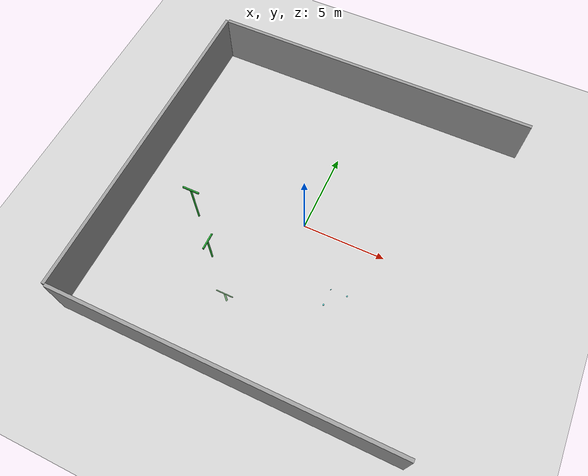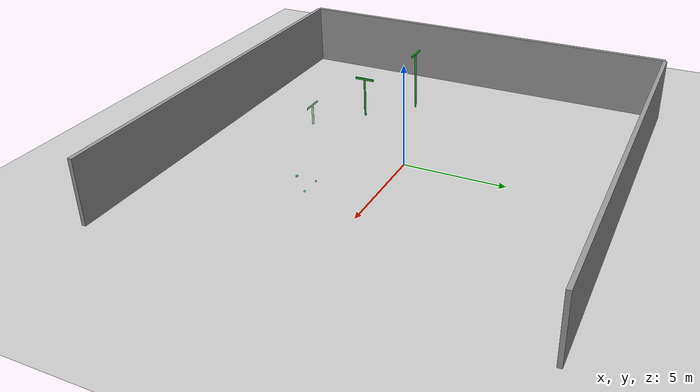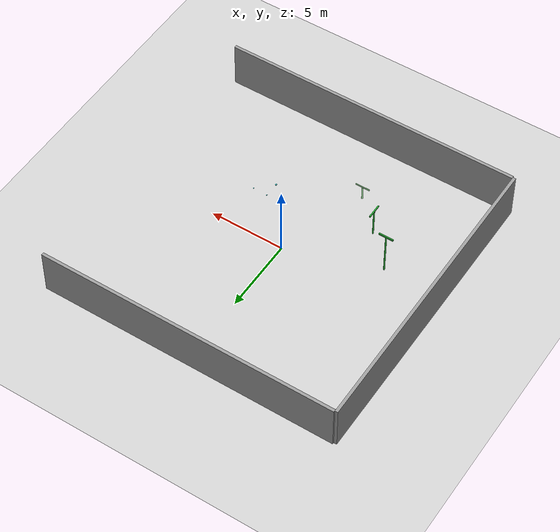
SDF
<sdf version="1.6">
 <world name="default">
  <model name="ground_plane">
   <static>1</static>
   <link name="link">
    <collision name="collision">
     <geometry><plane><normal>0 0 1</normal><size>100 100</size></plane></geometry>
     <surface><friction><ode><mu>100</mu><mu2>50</mu2></ode></friction></surface>
    </collision>
    <visual name="visual">
     <cast_shadows>0</cast_shadows>
     <geometry><plane><normal>0 0 1</normal><size>100 100</size></plane></geometry>
     <material>
      <script><uri>file://media/materials/scripts/gazebo.material</uri><name>Gazebo/Grey</name></script>
     </material>
    </visual>
   </link>
  </model>
  <model name="big_grey_wall_0">
   <static>1</static>
   <link name="link">
    <pose>0 0 1.4 0 -0 0</pose>
    <collision name="collision"><geometry><box><size>20 0.2 3.5</size></box></geometry></collision>
    <visual name="visual">
     <cast_shadows>0</cast_shadows>
     <geometry><box><size>20 0.2 3.5</size></box></geometry>
     <material>
      <script>
       <uri>model://grey_wall/materials/scripts</uri>
       <uri>model://grey_wall/materials/textures</uri>
       <name>vrc/grey_wall</name>
      </script>
     </material>
    </visual>
   </link>
   <pose>0 -10 0 0 -0 0</pose>
  </model>
  <model name="big_grey_wall_1">
   <static>1</static>
   <link name="link">
    <pose>0 0 1.4 0 -0 0</pose>
    <collision name="collision"><geometry><box><size>20 0.2 3.5</size></box></geometry></collision>
    <visual name="visual">
     <cast_shadows>0</cast_shadows>
     <geometry><box><size>20 0.2 3.5</size></box></geometry>
     <material>
      <script>
       <uri>model://grey_wall/materials/scripts</uri>
       <uri>model://grey_wall/materials/textures</uri>
       <name>vrc/grey_wall</name>
      </script>
     </material>
    </visual>
   </link>
   <pose>-10.11 0 0 0 -0 1.5707</pose>
  </model>
  <model name="big_grey_wall_2">
   <static>1</static>
   <link name="link">
    <pose>0 0 1.4 0 -0 0</pose>
    <collision name="collision"><geometry><box><size>20 0.2 3.5</size></box></geometry></collision>
    <visual name="visual">
     <cast_shadows>0</cast_shadows>
     <geometry><box><size>20 0.2 3.5</size></box></geometry>
     <material>
      <script>
       <uri>model://grey_wall/materials/scripts</uri>
       <uri>model://grey_wall/materials/textures</uri>
       <name>vrc/grey_wall</name>
      </script>
     </material>
    </visual>
   </link>
   <pose>0 10 0 0 -0 0</pose>
  </model>
  <model name="Objects">
   <link name="link_0">
    <pose>-0.32 0.333333 -0.01 0 -0 0</pose>
    <inertial>
     <mass>0.01</mass>
     <inertia>
      <ixx>0.166667</ixx>
      <ixy>0</ixy>
      <ixz>0</ixz>
      <iyy>0.166667</iyy>
      <iyz>0</iyz>
      <izz>0.166667</izz>
     </inertia>
    </inertial>
    <visual name="visual">
     <geometry><box><size>0.05 0.05 0.05</size></box></geometry>
     <material>
      <lighting>1</lighting>
      <script><uri>file://media/materials/scripts/gazebo.material</uri><name>Gazebo/Grey</name></script>
      <ambient>0 1 0.6 1</ambient>
      <diffuse>0.4 1 1 1</diffuse>
      <specular>0.01 0.01 0.01 1</specular>
      <emissive>0 0 0 1</emissive>
      <shader type="vertex"><normal_map>__default__</normal_map></shader>
     </material>
    </visual>
    <visual name="ModelPreview_0::link_0::visual_1">
     <geometry><box><size>0.05 0.05 0.05</size></box></geometry>
     <material>
      <lighting>1</lighting>
      <script><uri>file://media/materials/scripts/gazebo.material</uri><name>Gazebo/Grey</name></script>
      <ambient>0 1 0.6 1</ambient>
      <diffuse>0.4 1 1 1</diffuse>
      <specular>0.01 0.01 0.01 1</specular>
      <emissive>0 0 0 1</emissive>
      <shader type="vertex"><normal_map>__default__</normal_map></shader>
     </material>
    </visual>
    <collision name="collision">
     <geometry><box><size>0.05 0.05 0.05</size></box></geometry>
     <surface>
      <friction>
       <ode><mu>1</mu><mu2>1</mu2><fdir1>0 0 0</fdir1><slip1>0</slip1><slip2>0</slip2></ode>
       <torsional>
        <coefficient>1</coefficient>
        <patch_radius>0</patch_radius>
        <surface_radius>0</surface_radius>
        <use_patch_radius>1</use_patch_radius>
        <ode><slip>0</slip></ode>
       </torsional>
      </friction>
      <bounce><restitution_coefficient>0</restitution_coefficient><threshold>1e+06</threshold></bounce>
      <contact>
       <collide_without_contact>0</collide_without_contact>
       <collide_without_contact_bitmask>1</collide_without_contact_bitmask>
       <collide_bitmask>1</collide_bitmask>
       <ode>
        <soft_cfm>0</soft_cfm>
        <soft_erp>0.2</soft_erp>
        <kp>1e+13</kp>
        <kd>1</kd>
        <max_vel>0.01</max_vel>
        <min_depth>0</min_depth>
       </ode>
       <bullet>
        <split_impulse>1</split_impulse>
        <split_impulse_penetration_threshold>-0.01</split_impulse_penetration_threshold>
        <soft_cfm>0</soft_cfm>
        <soft_erp>0.2</soft_erp>
        <kp>1e+13</kp>
        <kd>1</kd>
       </bullet>
      </contact>
     </surface>
    </collision>
   </link>
   <link name="link_1">
    <pose>-0.34 -0.666667 0.005 0 -0 0</pose>
    <inertial>
     <mass>0.01</mass>
     <inertia>
      <ixx>0.166667</ixx>
      <ixy>0</ixy>
      <ixz>0</ixz>
      <iyy>0.166667</iyy>
      <iyz>0</iyz>
      <izz>0.166667</izz>
     </inertia>
    </inertial>
    <visual name="visual">
     <geometry><box><size>0.08 0.08 0.08</size></box></geometry>
     <material>
      <lighting>1</lighting>
      <script><uri>file://media/materials/scripts/gazebo.material</uri><name>Gazebo/Grey</name></script>
      <ambient>0 1 0.6 1</ambient>
      <diffuse>0.4 1 1 1</diffuse>
      <specular>0.01 0.01 0.01 1</specular>
      <emissive>0 0 0 1</emissive>
      <shader type="vertex"><normal_map>__default__</normal_map></shader>
     </material>
    </visual>
    <collision name="collision">
     <geometry><box><size>0.08 0.08 0.08</size></box></geometry>
     <surface>
      <friction>
       <ode><mu>1</mu><mu2>1</mu2><fdir1>0 0 0</fdir1><slip1>0</slip1><slip2>0</slip2></ode>
       <torsional>
        <coefficient>1</coefficient>
        <patch_radius>0</patch_radius>
        <surface_radius>0</surface_radius>
        <use_patch_radius>1</use_patch_radius>
        <ode><slip>0</slip></ode>
       </torsional>
      </friction>
      <bounce><restitution_coefficient>0</restitution_coefficient><threshold>1e+06</threshold></bounce>
      <contact>
       <collide_without_contact>0</collide_without_contact>
       <collide_without_contact_bitmask>1</collide_without_contact_bitmask>
       <collide_bitmask>1</collide_bitmask>
       <ode>
        <soft_cfm>0</soft_cfm>
        <soft_erp>0.2</soft_erp>
        <kp>1e+13</kp>
        <kd>1</kd>
        <max_vel>0.01</max_vel>
        <min_depth>0</min_depth>
       </ode>
       <bullet>
        <split_impulse>1</split_impulse>
        <split_impulse_penetration_threshold>-0.01</split_impulse_penetration_threshold>
        <soft_cfm>0</soft_cfm>
        <soft_erp>0.2</soft_erp>
        <kp>1e+13</kp>
        <kd>1</kd>
       </bullet>
      </contact>
     </surface>
    </collision>
   </link>
   <link name="link_2">
    <pose>0.66 0.333333 0.005 0 -0 0</pose>
    <inertial>
     <mass>0.01</mass>
     <inertia><ixx>0.1</ixx><ixy>0</ixy><ixz>0</ixz><iyy>0.1</iyy><iyz>0</iyz><izz>0.1</izz></inertia>
    </inertial>
    <visual name="visual">
     <geometry><sphere><radius>0.04</radius></sphere></geometry>
     <material>
      <lighting>1</lighting>
      <script><uri>file://media/materials/scripts/gazebo.material</uri><name>Gazebo/Grey</name></script>
      <ambient>0 1 0.6 1</ambient>
      <diffuse>0.4 1 1 1</diffuse>
      <specular>0.01 0.01 0.01 1</specular>
      <emissive>0 0 0 1</emissive>
      <shader type="vertex"><normal_map>__default__</normal_map></shader>
     </material>
    </visual>
    <collision name="collision">
     <geometry><sphere><radius>0.04</radius></sphere></geometry>
     <surface>
      <friction>
       <ode><mu>1</mu><mu2>1</mu2><fdir1>0 0 0</fdir1><slip1>0</slip1><slip2>0</slip2></ode>
       <torsional>
        <coefficient>1</coefficient>
        <patch_radius>0</patch_radius>
        <surface_radius>0</surface_radius>
        <use_patch_radius>1</use_patch_radius>
        <ode><slip>0</slip></ode>
       </torsional>
      </friction>
      <bounce><restitution_coefficient>0</restitution_coefficient><threshold>1e+06</threshold></bounce>
      <contact>
       <collide_without_contact>0</collide_without_contact>
       <collide_without_contact_bitmask>1</collide_without_contact_bitmask>
       <collide_bitmask>1</collide_bitmask>
       <ode>
        <soft_cfm>0</soft_cfm>
        <soft_erp>0.2</soft_erp>
        <kp>1e+13</kp>
        <kd>1</kd>
        <max_vel>0.01</max_vel>
        <min_depth>0</min_depth>
       </ode>
       <bullet>
        <split_impulse>1</split_impulse>
        <split_impulse_penetration_threshold>-0.01</split_impulse_penetration_threshold>
        <soft_cfm>0</soft_cfm>
        <soft_erp>0.2</soft_erp>
        <kp>1e+13</kp>
        <kd>1</kd>
       </bullet>
      </contact>
     </surface>
    </collision>
   </link>
   <static>0</static>
   <pose>3.34 -3.33333 0.035 1e-06 1e-06 0</pose>
  </model>
  <model name="Pilars_0">
   <link name="link_0">
    <inertial>
     <mass>1000</mass>
     <inertia><ixx>0.145833</ixx><ixy>0</ixy><ixz>0</ixz><iyy>0.145833</iyy><iyz>0</iyz><izz>0.125</izz></inertia>
    </inertial>
    <visual name="visual">
     <geometry><cylinder><radius>0.05</radius><length>2</length></cylinder></geometry>
     <material>
      <lighting>1</lighting>
      <script><uri>file://media/materials/scripts/gazebo.material</uri><name>Gazebo/Green</name></script>
      <ambient>0 0.54 0.39 1</ambient>
      <diffuse>0.7 1 0.7 1</diffuse>
      <specular>0.01 0.01 0.01 1</specular>
      <emissive>0 0 0 1</emissive>
      <shader type="vertex"><normal_map>__default__</normal_map></shader>
     </material>
    </visual>
    <visual name="ModelPreview_0::link_0::visual_2">
     <pose>0 0 1.05 0 -0 0</pose>
     <geometry><box><size>0.08 1 0.1</size></box></geometry>
     <material>
      <lighting>1</lighting>
      <script><uri>file://media/materials/scripts/gazebo.material</uri><name>Gazebo/Green</name></script>
      <ambient>0 0.54 0.39 1</ambient>
      <diffuse>0.7 1 0.7 1</diffuse>
      <specular>0.01 0.01 0.01 1</specular>
      <emissive>0 0 0 1</emissive>
      <shader type="vertex"><normal_map>__default__</normal_map></shader>
     </material>
    </visual>
    <collision name="collision">
     <geometry><cylinder><radius>0.05</radius><length>2</length></cylinder></geometry>
     <surface>
      <friction>
       <ode><mu>1</mu><mu2>1</mu2><fdir1>0 0 0</fdir1><slip1>0</slip1><slip2>0</slip2></ode>
       <torsional>
        <coefficient>1</coefficient>
        <patch_radius>0</patch_radius>
        <surface_radius>0</surface_radius>
        <use_patch_radius>1</use_patch_radius>
        <ode><slip>0</slip></ode>
       </torsional>
      </friction>
      <bounce><restitution_coefficient>0</restitution_coefficient><threshold>1e+06</threshold></bounce>
      <contact>
       <collide_without_contact>0</collide_without_contact>
       <collide_without_contact_bitmask>1</collide_without_contact_bitmask>
       <collide_bitmask>1</collide_bitmask>
       <ode>
        <soft_cfm>0</soft_cfm>
        <soft_erp>0.2</soft_erp>
        <kp>1e+13</kp>
        <kd>1</kd>
        <max_vel>0.01</max_vel>
        <min_depth>0</min_depth>
       </ode>
       <bullet>
        <split_impulse>1</split_impulse>
        <split_impulse_penetration_threshold>-0.01</split_impulse_penetration_threshold>
        <soft_cfm>0</soft_cfm>
        <soft_erp>0.2</soft_erp>
        <kp>1e+13</kp>
        <kd>1</kd>
       </bullet>
      </contact>
     </surface>
    </collision>
    <collision name="collision_2">
     <pose>0 0 1.05 0 -0 0</pose>
     <geometry><box><size>0.08 1 0.1</size></box></geometry>
     <surface>
      <friction>
       <ode><mu>1</mu><mu2>1</mu2><fdir1>0 0 0</fdir1><slip1>0</slip1><slip2>0</slip2></ode>
       <torsional>
        <coefficient>1</coefficient>
        <patch_radius>0</patch_radius>
        <surface_radius>0</surface_radius>
        <use_patch_radius>1</use_patch_radius>
        <ode><slip>0</slip></ode>
       </torsional>
      </friction>
      <bounce><restitution_coefficient>0</restitution_coefficient><threshold>1e+06</threshold></bounce>
      <contact>
       <collide_without_contact>0</collide_without_contact>
       <collide_without_contact_bitmask>1</collide_without_contact_bitmask>
       <collide_bitmask>1</collide_bitmask>
       <ode>
        <soft_cfm>0</soft_cfm>
        <soft_erp>0.2</soft_erp>
        <kp>1e+13</kp>
        <kd>1</kd>
        <max_vel>0.01</max_vel>
        <min_depth>0</min_depth>
       </ode>
       <bullet>
        <split_impulse>1</split_impulse>
        <split_impulse_penetration_threshold>-0.01</split_impulse_penetration_threshold>
        <soft_cfm>0</soft_cfm>
        <soft_erp>0.2</soft_erp>
        <kp>1e+13</kp>
        <kd>1</kd>
       </bullet>
      </contact>
     </surface>
    </collision>
   </link>
   <link name="link_1">
    <pose>2 -2 -0.5 0 -0 0</pose>
    <inertial>
     <mass>1000</mass>
     <inertia><ixx>0.145833</ixx><ixy>0</ixy><ixz>0</ixz><iyy>0.145833</iyy><iyz>0</iyz><izz>0.125</izz></inertia>
    </inertial>
    <visual name="visual">
     <geometry><cylinder><radius>0.05</radius><length>1</length></cylinder></geometry>
     <material>
      <lighting>1</lighting>
      <script><uri>file://media/materials/scripts/gazebo.material</uri><name>Gazebo/Grey</name></script>
      <ambient>0 0.54 0.39 1</ambient>
      <diffuse>0.7 1 0.7 1</diffuse>
      <specular>0.01 0.01 0.01 1</specular>
      <emissive>0 0 0 1</emissive>
      <shader type="vertex"><normal_map>__default__</normal_map></shader>
     </material>
    </visual>
    <visual name="ModelPreview_0::link_1::visual_1">
     <pose>0 0 0.55 0 -0 0</pose>
     <geometry><box><size>1 0.035 0.1</size></box></geometry>
     <material>
      <lighting>1</lighting>
      <script><uri>file://media/materials/scripts/gazebo.material</uri><name>Gazebo/Grey</name></script>
      <ambient>0 0.54 0.39 1</ambient>
      <diffuse>0.7 1 0.7 1</diffuse>
      <specular>0.01 0.01 0.01 1</specular>
      <emissive>0 0 0 1</emissive>
      <shader type="vertex"><normal_map>__default__</normal_map></shader>
     </material>
    </visual>
    <collision name="collision">
     <geometry><cylinder><radius>0.05</radius><length>1</length></cylinder></geometry>
     <surface>
      <friction>
       <ode><mu>1</mu><mu2>1</mu2><fdir1>0 0 0</fdir1><slip1>0</slip1><slip2>0</slip2></ode>
       <torsional>
        <coefficient>1</coefficient>
        <patch_radius>0</patch_radius>
        <surface_radius>0</surface_radius>
        <use_patch_radius>1</use_patch_radius>
        <ode><slip>0</slip></ode>
       </torsional>
      </friction>
      <bounce><restitution_coefficient>0</restitution_coefficient><threshold>1e+06</threshold></bounce>
      <contact>
       <collide_without_contact>0</collide_without_contact>
       <collide_without_contact_bitmask>1</collide_without_contact_bitmask>
       <collide_bitmask>1</collide_bitmask>
       <ode>
        <soft_cfm>0</soft_cfm>
        <soft_erp>0.2</soft_erp>
        <kp>1e+13</kp>
        <kd>1</kd>
        <max_vel>0.01</max_vel>
        <min_depth>0</min_depth>
       </ode>
       <bullet>
        <split_impulse>1</split_impulse>
        <split_impulse_penetration_threshold>-0.01</split_impulse_penetration_threshold>
        <soft_cfm>0</soft_cfm>
        <soft_erp>0.2</soft_erp>
        <kp>1e+13</kp>
        <kd>1</kd>
       </bullet>
      </contact>
     </surface>
    </collision>
    <collision name="__default__">
     <pose>0 0 0.55 0 -0 0</pose>
     <geometry><box><size>1 0.035 0.1</size></box></geometry>
     <surface>
      <friction>
       <ode><mu>1</mu><mu2>1</mu2><fdir1>0 0 0</fdir1><slip1>0</slip1><slip2>0</slip2></ode>
       <torsional>
        <coefficient>1</coefficient>
        <patch_radius>0</patch_radius>
        <surface_radius>0</surface_radius>
        <use_patch_radius>1</use_patch_radius>
        <ode><slip>0</slip></ode>
       </torsional>
      </friction>
      <bounce><restitution_coefficient>0</restitution_coefficient><threshold>1e+06</threshold></bounce>
      <contact>
       <collide_without_contact>0</collide_without_contact>
       <collide_without_contact_bitmask>1</collide_without_contact_bitmask>
       <collide_bitmask>1</collide_bitmask>
       <ode>
        <soft_cfm>0</soft_cfm>
        <soft_erp>0.2</soft_erp>
        <kp>1e+13</kp>
        <kd>1</kd>
        <max_vel>0.01</max_vel>
        <min_depth>0</min_depth>
       </ode>
       <bullet>
        <split_impulse>1</split_impulse>
        <split_impulse_penetration_threshold>-0.01</split_impulse_penetration_threshold>
        <soft_cfm>0</soft_cfm>
        <soft_erp>0.2</soft_erp>
        <kp>1e+13</kp>
        <kd>1</kd>
       </bullet>
      </contact>
     </surface>
    </collision>
   </link>
   <link name="link_2">
    <pose>-2 2 0.5 0 -0 0</pose>
    <inertial>
     <mass>1000</mass>
     <inertia><ixx>0.145833</ixx><ixy>0</ixy><ixz>0</ixz><iyy>0.145833</iyy><iyz>0</iyz><izz>0.125</izz></inertia>
    </inertial>
    <visual name="visual">
     <geometry><cylinder><radius>0.05</radius><length>3</length></cylinder></geometry>
     <material>
      <lighting>1</lighting>
      <script><uri>file://media/materials/scripts/gazebo.material</uri><name>Gazebo/Green</name></script>
      <ambient>0 0.54 0.39 1</ambient>
      <diffuse>0.7 1 0.7 1</diffuse>
      <specular>0.01 0.01 0.01 1</specular>
      <emissive>0 0 0 1</emissive>
      <shader type="vertex"><normal_map>__default__</normal_map></shader>
     </material>
    </visual>
    <visual name="ModelPreview_0::link_2::visual_3">
     <pose>0 0 1.55 0 -0 0</pose>
     <geometry><box><size>1 0.08 0.1</size></box></geometry>
     <material>
      <lighting>1</lighting>
      <script><uri>file://media/materials/scripts/gazebo.material</uri><name>Gazebo/Green</name></script>
      <ambient>0 0.54 0.39 1</ambient>
      <diffuse>0.7 1 0.7 1</diffuse>
      <specular>0.01 0.01 0.01 1</specular>
      <emissive>0 0 0 1</emissive>
      <shader type="vertex"><normal_map>__default__</normal_map></shader>
     </material>
    </visual>
    <visual name="ModelPreview_0::link_2::visual_2">
     <pose>0 0 1.55 0 -0 0</pose>
     <geometry><box><size>1 0.08 0.1</size></box></geometry>
     <material>
      <lighting>1</lighting>
      <script><uri>file://media/materials/scripts/gazebo.material</uri><name>Gazebo/Green</name></script>
      <ambient>0 0.54 0.39 1</ambient>
      <diffuse>0.7 1 0.7 1</diffuse>
      <specular>0.01 0.01 0.01 1</specular>
      <emissive>0 0 0 1</emissive>
      <shader type="vertex"><normal_map>__default__</normal_map></shader>
     </material>
    </visual>
    <collision name="collision">
     <geometry><cylinder><radius>0.05</radius><length>3</length></cylinder></geometry>
     <surface>
      <friction>
       <ode><mu>1</mu><mu2>1</mu2><fdir1>0 0 0</fdir1><slip1>0</slip1><slip2>0</slip2></ode>
       <torsional>
        <coefficient>1</coefficient>
        <patch_radius>0</patch_radius>
        <surface_radius>0</surface_radius>
        <use_patch_radius>1</use_patch_radius>
        <ode><slip>0</slip></ode>
       </torsional>
      </friction>
      <bounce><restitution_coefficient>0</restitution_coefficient><threshold>1e+06</threshold></bounce>
      <contact>
       <collide_without_contact>0</collide_without_contact>
       <collide_without_contact_bitmask>1</collide_without_contact_bitmask>
       <collide_bitmask>1</collide_bitmask>
       <ode>
        <soft_cfm>0</soft_cfm>
        <soft_erp>0.2</soft_erp>
        <kp>1e+13</kp>
        <kd>1</kd>
        <max_vel>0.01</max_vel>
        <min_depth>0</min_depth>
       </ode>
       <bullet>
        <split_impulse>1</split_impulse>
        <split_impulse_penetration_threshold>-0.01</split_impulse_penetration_threshold>
        <soft_cfm>0</soft_cfm>
        <soft_erp>0.2</soft_erp>
        <kp>1e+13</kp>
        <kd>1</kd>
       </bullet>
      </contact>
     </surface>
    </collision>
    <collision name="collision_2">
     <pose>0 0 1.55 0 -0 0</pose>
     <geometry><box><size>1 0.08 0.1</size></box></geometry>
     <surface>
      <friction>
       <ode><mu>1</mu><mu2>1</mu2><fdir1>0 0 0</fdir1><slip1>0</slip1><slip2>0</slip2></ode>
       <torsional>
        <coefficient>1</coefficient>
        <patch_radius>0</patch_radius>
        <surface_radius>0</surface_radius>
        <use_patch_radius>1</use_patch_radius>
        <ode><slip>0</slip></ode>
       </torsional>
      </friction>
      <bounce><restitution_coefficient>0</restitution_coefficient><threshold>1e+06</threshold></bounce>
      <contact>
       <collide_without_contact>0</collide_without_contact>
       <collide_without_contact_bitmask>1</collide_without_contact_bitmask>
       <collide_bitmask>1</collide_bitmask>
       <ode>
        <soft_cfm>0</soft_cfm>
        <soft_erp>0.2</soft_erp>
        <kp>1e+13</kp>
        <kd>1</kd>
        <max_vel>0.01</max_vel>
        <min_depth>0</min_depth>
       </ode>
       <bullet>
        <split_impulse>1</split_impulse>
        <split_impulse_penetration_threshold>-0.01</split_impulse_penetration_threshold>
        <soft_cfm>0</soft_cfm>
        <soft_erp>0.2</soft_erp>
        <kp>1e+13</kp>
        <kd>1</kd>
       </bullet>
      </contact>
     </surface>
    </collision>
   </link>
   <static>1</static>
   <pose>-4 -4 1 0 -0 0</pose>
  </model>
 </world>
</sdf>
